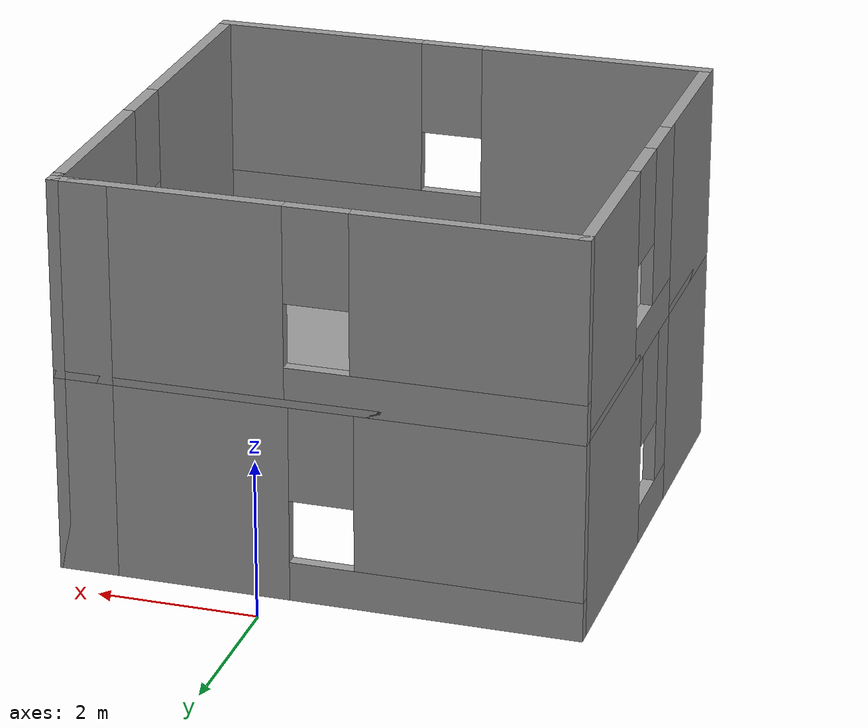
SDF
<?xml version='1.0'?>
<sdf version='1.6'>
  <model name='house8'>
    <pose frame=''>-0.555 -3.575 0 0 -0 0</pose>
    <link name='Floor_0'>
      <collision name='Floor_0_Collision'>
        <geometry>
          <box>
            <size>6.5 6.1 0.1</size>
          </box>
        </geometry>
        <pose frame=''>0 0 0.05 0 -0 0</pose>
      </collision>
      <visual name='Floor_0_Visual'>
        <pose frame=''>0 0 0.05 0 -0 0</pose>
        <geometry>
          <box>
            <size>6.5 6.1 0.1</size>
          </box>
        </geometry>
        <material>
          <script>
            <uri>file://media/materials/scripts/gazebo.material</uri>
            <name>Gazebo/Grey</name>
          </script>
          <ambient>1 1 1 1</ambient>
        </material>
        <meta>
          <layer>1</layer>
        </meta>
      </visual>
      <pose frame=''>0 0 2.5 0 -0 0</pose>
    </link>
    <link name='Wall_0'>
      <pose frame=''>-3.175 1.05 0 0 -0 -1.5708</pose>
      <visual name='Wall_0_Visual_0'>
        <pose frame=''>-0.661468 0 1.25 0 -0 0</pose>
        <geometry>
          <box>
            <size>2.67706 0.15 2.5</size>
          </box>
        </geometry>
        <material>
          <script>
            <uri>file://media/materials/scripts/gazebo.material</uri>
            <name>Gazebo/Grey</name>
          </script>
          <ambient>1 1 1 1</ambient>
        </material>
        <meta>
          <layer>0</layer>
        </meta>
      </visual>
      <collision name='Wall_0_Collision_0'>
        <geometry>
          <box>
            <size>2.67706 0.15 2.5</size>
          </box>
        </geometry>
        <pose frame=''>-0.661468 0 1.25 0 -0 0</pose>
      </collision>
      <visual name='Wall_0_Visual_1'>
        <pose frame=''>1.33853 0 0.25 0 -0 0</pose>
        <geometry>
          <box>
            <size>1.32294 0.15 0.5</size>
          </box>
        </geometry>
        <material>
          <script>
            <uri>file://media/materials/scripts/gazebo.material</uri>
            <name>Gazebo/Grey</name>
          </script>
          <ambient>1 1 1 1</ambient>
        </material>
        <meta>
          <layer>0</layer>
        </meta>
      </visual>
      <collision name='Wall_0_Collision_1'>
        <geometry>
          <box>
            <size>1.32294 0.15 0.5</size>
          </box>
        </geometry>
        <pose frame=''>1.33853 0 0.25 0 -0 0</pose>
      </collision>
      <visual name='Wall_0_Visual_2'>
        <pose frame=''>1.73853 0 1.5 0 -0 0</pose>
        <geometry>
          <box>
            <size>0.522937 0.15 2</size>
          </box>
        </geometry>
        <material>
          <script>
            <uri>file://media/materials/scripts/gazebo.material</uri>
            <name>Gazebo/Grey</name>
          </script>
          <ambient>1 1 1 1</ambient>
        </material>
        <meta>
          <layer>0</layer>
        </meta>
      </visual>
      <collision name='Wall_0_Collision_2'>
        <geometry>
          <box>
            <size>0.522937 0.15 2</size>
          </box>
        </geometry>
        <pose frame=''>1.73853 0 1.5 0 -0 0</pose>
      </collision>
      <visual name='Wall_0_Visual_3'>
        <pose frame=''>1.07706 0 1.9 0 -0 0</pose>
        <geometry>
          <box>
            <size>0.8 0.15 1.2</size>
          </box>
        </geometry>
        <material>
          <script>
            <uri>file://media/materials/scripts/gazebo.material</uri>
            <name>Gazebo/Grey</name>
          </script>
          <ambient>1 1 1 1</ambient>
        </material>
        <meta>
          <layer>0</layer>
        </meta>
      </visual>
      <collision name='Wall_0_Collision_3'>
        <geometry>
          <box>
            <size>0.8 0.15 1.2</size>
          </box>
        </geometry>
        <pose frame=''>1.07706 0 1.9 0 -0 0</pose>
      </collision>
    </link>
    <link name='Wall_10'>
      <collision name='Wall_10_Collision'>
        <geometry>
          <box>
            <size>0.15 0.15 2.5</size>
          </box>
        </geometry>
        <pose frame=''>0 0 1.25 0 -0 0</pose>
      </collision>
      <visual name='Wall_10_Visual'>
        <pose frame=''>0 0 1.25 0 -0 0</pose>
        <geometry>
          <box>
            <size>0.15 0.15 2.5</size>
          </box>
        </geometry>
        <material>
          <script>
            <uri>file://media/materials/scripts/gazebo.material</uri>
            <name>Gazebo/Grey</name>
          </script>
          <ambient>1 1 1 1</ambient>
        </material>
        <meta>
          <layer>0</layer>
        </meta>
      </visual>
      <pose frame=''>3.175 2.875 0 0 -0 0</pose>
    </link>
    <link name='Wall_11'>
      <collision name='Wall_11_Collision'>
        <geometry>
          <box>
            <size>0.15 0.15 2.5</size>
          </box>
        </geometry>
        <pose frame=''>0 0 1.25 0 -0 0</pose>
      </collision>
      <visual name='Wall_11_Visual'>
        <pose frame=''>0 0 1.25 0 -0 0</pose>
        <geometry>
          <box>
            <size>0.15 0.15 2.5</size>
          </box>
        </geometry>
        <material>
          <script>
            <uri>file://media/materials/scripts/gazebo.material</uri>
            <name>Gazebo/Grey</name>
          </script>
          <ambient>1 1 1 1</ambient>
        </material>
        <meta>
          <layer>0</layer>
        </meta>
      </visual>
      <pose frame=''>3.175 2.875 0 0 -0 0</pose>
    </link>
    <link name='Wall_12'>
      <collision name='Wall_12_Collision'>
        <geometry>
          <box>
            <size>0.25 0.15 2.5</size>
          </box>
        </geometry>
        <pose frame=''>0 0 1.25 0 -0 0</pose>
      </collision>
      <visual name='Wall_12_Visual'>
        <pose frame=''>0 0 1.25 0 -0 0</pose>
        <geometry>
          <box>
            <size>0.25 0.15 2.5</size>
          </box>
        </geometry>
        <material>
          <script>
            <uri>file://media/materials/scripts/gazebo.material</uri>
            <name>Gazebo/Grey</name>
          </script>
          <ambient>1 1 1 1</ambient>
        </material>
        <meta>
          <layer>0</layer>
        </meta>
      </visual>
      <pose frame=''>3.175 2.925 0 0 -0 1.5708</pose>
    </link>
    <link name='Wall_13'>
      <collision name='Wall_13_Collision'>
        <geometry>
          <box>
            <size>0.75 0.15 2.5</size>
          </box>
        </geometry>
        <pose frame=''>0 0 1.25 0 -0 0</pose>
      </collision>
      <visual name='Wall_13_Visual'>
        <pose frame=''>0 0 1.25 0 -0 0</pose>
        <geometry>
          <box>
            <size>0.75 0.15 2.5</size>
          </box>
        </geometry>
        <material>
          <script>
            <uri>file://media/materials/scripts/gazebo.material</uri>
            <name>Gazebo/Grey</name>
          </script>
          <ambient>1 1 1 1</ambient>
        </material>
        <meta>
          <layer>0</layer>
        </meta>
      </visual>
      <pose frame=''>2.875 2.975 0 0 -0 3.14159</pose>
    </link>
    <link name='Wall_15'>
      <pose frame=''>-3.175 1.05 2.5 0 -0 -1.5708</pose>
      <visual name='Wall_15_Visual_0'>
        <pose frame=''>-0.858079 0 1.25 0 -0 0</pose>
        <geometry>
          <box>
            <size>2.28384 0.15 2.5</size>
          </box>
        </geometry>
        <material>
          <script>
            <uri>file://media/materials/scripts/gazebo.material</uri>
            <name>Gazebo/Grey</name>
          </script>
          <ambient>1 1 1 1</ambient>
        </material>
        <meta>
          <layer>1</layer>
        </meta>
      </visual>
      <collision name='Wall_15_Collision_0'>
        <geometry>
          <box>
            <size>2.28384 0.15 2.5</size>
          </box>
        </geometry>
        <pose frame=''>-0.858079 0 1.25 0 -0 0</pose>
      </collision>
      <visual name='Wall_15_Visual_1'>
        <pose frame=''>1.14192 0 0.25 0 -0 0</pose>
        <geometry>
          <box>
            <size>1.71616 0.15 0.5</size>
          </box>
        </geometry>
        <material>
          <script>
            <uri>file://media/materials/scripts/gazebo.material</uri>
            <name>Gazebo/Grey</name>
          </script>
          <ambient>1 1 1 1</ambient>
        </material>
        <meta>
          <layer>1</layer>
        </meta>
      </visual>
      <collision name='Wall_15_Collision_1'>
        <geometry>
          <box>
            <size>1.71616 0.15 0.5</size>
          </box>
        </geometry>
        <pose frame=''>1.14192 0 0.25 0 -0 0</pose>
      </collision>
      <visual name='Wall_15_Visual_2'>
        <pose frame=''>1.54192 0 1.5 0 -0 0</pose>
        <geometry>
          <box>
            <size>0.916157 0.15 2</size>
          </box>
        </geometry>
        <material>
          <script>
            <uri>file://media/materials/scripts/gazebo.material</uri>
            <name>Gazebo/Grey</name>
          </script>
          <ambient>1 1 1 1</ambient>
        </material>
        <meta>
          <layer>1</layer>
        </meta>
      </visual>
      <collision name='Wall_15_Collision_2'>
        <geometry>
          <box>
            <size>0.916157 0.15 2</size>
          </box>
        </geometry>
        <pose frame=''>1.54192 0 1.5 0 -0 0</pose>
      </collision>
      <visual name='Wall_15_Visual_3'>
        <pose frame=''>0.683843 0 1.9 0 -0 0</pose>
        <geometry>
          <box>
            <size>0.8 0.15 1.2</size>
          </box>
        </geometry>
        <material>
          <script>
            <uri>file://media/materials/scripts/gazebo.material</uri>
            <name>Gazebo/Grey</name>
          </script>
          <ambient>1 1 1 1</ambient>
        </material>
        <meta>
          <layer>1</layer>
        </meta>
      </visual>
      <collision name='Wall_15_Collision_3'>
        <geometry>
          <box>
            <size>0.8 0.15 1.2</size>
          </box>
        </geometry>
        <pose frame=''>0.683843 0 1.9 0 -0 0</pose>
      </collision>
    </link>
    <link name='Wall_16'>
      <pose frame=''>-0.125 2.975 2.5 0 -0 3.14159</pose>
      <visual name='Wall_16_Visual_0'>
        <pose frame=''>-1.81376 0 1.25 0 -0 0</pose>
        <geometry>
          <box>
            <size>2.62247 0.15 2.5</size>
          </box>
        </geometry>
        <material>
          <script>
            <uri>file://media/materials/scripts/gazebo.material</uri>
            <name>Gazebo/Grey</name>
          </script>
          <ambient>1 1 1 1</ambient>
        </material>
        <meta>
          <layer>1</layer>
        </meta>
      </visual>
      <collision name='Wall_16_Collision_0'>
        <geometry>
          <box>
            <size>2.62247 0.15 2.5</size>
          </box>
        </geometry>
        <pose frame=''>-1.81376 0 1.25 0 -0 0</pose>
      </collision>
      <visual name='Wall_16_Visual_1'>
        <pose frame=''>1.31124 0 0.25 0 -0 0</pose>
        <geometry>
          <box>
            <size>3.62753 0.15 0.5</size>
          </box>
        </geometry>
        <material>
          <script>
            <uri>file://media/materials/scripts/gazebo.material</uri>
            <name>Gazebo/Grey</name>
          </script>
          <ambient>1 1 1 1</ambient>
        </material>
        <meta>
          <layer>1</layer>
        </meta>
      </visual>
      <collision name='Wall_16_Collision_1'>
        <geometry>
          <box>
            <size>3.62753 0.15 0.5</size>
          </box>
        </geometry>
        <pose frame=''>1.31124 0 0.25 0 -0 0</pose>
      </collision>
      <visual name='Wall_16_Visual_2'>
        <pose frame=''>1.71124 0 1.5 0 -0 0</pose>
        <geometry>
          <box>
            <size>2.82753 0.15 2</size>
          </box>
        </geometry>
        <material>
          <script>
            <uri>file://media/materials/scripts/gazebo.material</uri>
            <name>Gazebo/Grey</name>
          </script>
          <ambient>1 1 1 1</ambient>
        </material>
        <meta>
          <layer>1</layer>
        </meta>
      </visual>
      <collision name='Wall_16_Collision_2'>
        <geometry>
          <box>
            <size>2.82753 0.15 2</size>
          </box>
        </geometry>
        <pose frame=''>1.71124 0 1.5 0 -0 0</pose>
      </collision>
      <visual name='Wall_16_Visual_3'>
        <pose frame=''>-0.102526 0 1.9 0 -0 0</pose>
        <geometry>
          <box>
            <size>0.8 0.15 1.2</size>
          </box>
        </geometry>
        <material>
          <script>
            <uri>file://media/materials/scripts/gazebo.material</uri>
            <name>Gazebo/Grey</name>
          </script>
          <ambient>1 1 1 1</ambient>
        </material>
        <meta>
          <layer>1</layer>
        </meta>
      </visual>
      <collision name='Wall_16_Collision_3'>
        <geometry>
          <box>
            <size>0.8 0.15 1.2</size>
          </box>
        </geometry>
        <pose frame=''>-0.102526 0 1.9 0 -0 0</pose>
      </collision>
    </link>
    <link name='Wall_17'>
      <collision name='Wall_17_Collision'>
        <geometry>
          <box>
            <size>2.25 0.15 2.5</size>
          </box>
        </geometry>
        <pose frame=''>0 0 1.25 0 -0 0</pose>
      </collision>
      <visual name='Wall_17_Visual'>
        <pose frame=''>0 0 1.25 0 -0 0</pose>
        <geometry>
          <box>
            <size>2.25 0.15 2.5</size>
          </box>
        </geometry>
        <material>
          <script>
            <uri>file://media/materials/scripts/gazebo.material</uri>
            <name>Gazebo/Grey</name>
          </script>
          <ambient>1 1 1 1</ambient>
        </material>
        <meta>
          <layer>1</layer>
        </meta>
      </visual>
      <pose frame=''>-3.175 -1.925 2.5 0 -0 -1.5708</pose>
    </link>
    <link name='Wall_18'>
      <pose frame=''>0 -2.975 2.5 0 -0 0</pose>
      <visual name='Wall_18_Visual_0'>
        <pose frame=''>-1.76684 0 1.25 0 -0 0</pose>
        <geometry>
          <box>
            <size>2.96631 0.15 2.5</size>
          </box>
        </geometry>
        <material>
          <script>
            <uri>file://media/materials/scripts/gazebo.material</uri>
            <name>Gazebo/Grey</name>
          </script>
          <ambient>1 1 1 1</ambient>
        </material>
        <meta>
          <layer>1</layer>
        </meta>
      </visual>
      <collision name='Wall_18_Collision_0'>
        <geometry>
          <box>
            <size>2.96631 0.15 2.5</size>
          </box>
        </geometry>
        <pose frame=''>-1.76684 0 1.25 0 -0 0</pose>
      </collision>
      <visual name='Wall_18_Visual_1'>
        <pose frame=''>1.48316 0 0.25 0 -0 0</pose>
        <geometry>
          <box>
            <size>3.53369 0.15 0.5</size>
          </box>
        </geometry>
        <material>
          <script>
            <uri>file://media/materials/scripts/gazebo.material</uri>
            <name>Gazebo/Grey</name>
          </script>
          <ambient>1 1 1 1</ambient>
        </material>
        <meta>
          <layer>1</layer>
        </meta>
      </visual>
      <collision name='Wall_18_Collision_1'>
        <geometry>
          <box>
            <size>3.53369 0.15 0.5</size>
          </box>
        </geometry>
        <pose frame=''>1.48316 0 0.25 0 -0 0</pose>
      </collision>
      <visual name='Wall_18_Visual_2'>
        <pose frame=''>1.88315 0 1.5 0 -0 0</pose>
        <geometry>
          <box>
            <size>2.73369 0.15 2</size>
          </box>
        </geometry>
        <material>
          <script>
            <uri>file://media/materials/scripts/gazebo.material</uri>
            <name>Gazebo/Grey</name>
          </script>
          <ambient>1 1 1 1</ambient>
        </material>
        <meta>
          <layer>1</layer>
        </meta>
      </visual>
      <collision name='Wall_18_Collision_2'>
        <geometry>
          <box>
            <size>2.73369 0.15 2</size>
          </box>
        </geometry>
        <pose frame=''>1.88315 0 1.5 0 -0 0</pose>
      </collision>
      <visual name='Wall_18_Visual_3'>
        <pose frame=''>0.11631 0 1.9 0 -0 0</pose>
        <geometry>
          <box>
            <size>0.8 0.15 1.2</size>
          </box>
        </geometry>
        <material>
          <script>
            <uri>file://media/materials/scripts/gazebo.material</uri>
            <name>Gazebo/Grey</name>
          </script>
          <ambient>1 1 1 1</ambient>
        </material>
        <meta>
          <layer>1</layer>
        </meta>
      </visual>
      <collision name='Wall_18_Collision_3'>
        <geometry>
          <box>
            <size>0.8 0.15 1.2</size>
          </box>
        </geometry>
        <pose frame=''>0.11631 0 1.9 0 -0 0</pose>
      </collision>
    </link>
    <link name='Wall_19'>
      <pose frame=''>3.175 -0.05 2.5 0 -0 1.5708</pose>
      <visual name='Wall_19_Visual_0'>
        <pose frame=''>-1.59601 0 1.25 0 -0 0</pose>
        <geometry>
          <box>
            <size>2.80798 0.15 2.5</size>
          </box>
        </geometry>
        <material>
          <script>
            <uri>file://media/materials/scripts/gazebo.material</uri>
            <name>Gazebo/Grey</name>
          </script>
          <ambient>1 1 1 1</ambient>
        </material>
        <meta>
          <layer>1</layer>
        </meta>
      </visual>
      <collision name='Wall_19_Collision_0'>
        <geometry>
          <box>
            <size>2.80798 0.15 2.5</size>
          </box>
        </geometry>
        <pose frame=''>-1.59601 0 1.25 0 -0 0</pose>
      </collision>
      <visual name='Wall_19_Visual_1'>
        <pose frame=''>1.40399 0 0.25 0 -0 0</pose>
        <geometry>
          <box>
            <size>3.19202 0.15 0.5</size>
          </box>
        </geometry>
        <material>
          <script>
            <uri>file://media/materials/scripts/gazebo.material</uri>
            <name>Gazebo/Grey</name>
          </script>
          <ambient>1 1 1 1</ambient>
        </material>
        <meta>
          <layer>1</layer>
        </meta>
      </visual>
      <collision name='Wall_19_Collision_1'>
        <geometry>
          <box>
            <size>3.19202 0.15 0.5</size>
          </box>
        </geometry>
        <pose frame=''>1.40399 0 0.25 0 -0 0</pose>
      </collision>
      <visual name='Wall_19_Visual_2'>
        <pose frame=''>1.80399 0 1.5 0 -0 0</pose>
        <geometry>
          <box>
            <size>2.39202 0.15 2</size>
          </box>
        </geometry>
        <material>
          <script>
            <uri>file://media/materials/scripts/gazebo.material</uri>
            <name>Gazebo/Grey</name>
          </script>
          <ambient>1 1 1 1</ambient>
        </material>
        <meta>
          <layer>1</layer>
        </meta>
      </visual>
      <collision name='Wall_19_Collision_2'>
        <geometry>
          <box>
            <size>2.39202 0.15 2</size>
          </box>
        </geometry>
        <pose frame=''>1.80399 0 1.5 0 -0 0</pose>
      </collision>
      <visual name='Wall_19_Visual_3'>
        <pose frame=''>0.207982 0 1.9 0 -0 0</pose>
        <geometry>
          <box>
            <size>0.8 0.15 1.2</size>
          </box>
        </geometry>
        <material>
          <script>
            <uri>file://media/materials/scripts/gazebo.material</uri>
            <name>Gazebo/Grey</name>
          </script>
          <ambient>1 1 1 1</ambient>
        </material>
        <meta>
          <layer>1</layer>
        </meta>
      </visual>
      <collision name='Wall_19_Collision_3'>
        <geometry>
          <box>
            <size>0.8 0.15 1.2</size>
          </box>
        </geometry>
        <pose frame=''>0.207982 0 1.9 0 -0 0</pose>
      </collision>
    </link>
    <link name='Wall_20'>
      <collision name='Wall_20_Collision'>
        <geometry>
          <box>
            <size>0.15 0.15 2.5</size>
          </box>
        </geometry>
        <pose frame=''>0 0 1.25 0 -0 0</pose>
      </collision>
      <visual name='Wall_20_Visual'>
        <pose frame=''>0 0 1.25 0 -0 0</pose>
        <geometry>
          <box>
            <size>0.15 0.15 2.5</size>
          </box>
        </geometry>
        <material>
          <script>
            <uri>file://media/materials/scripts/gazebo.material</uri>
            <name>Gazebo/Grey</name>
          </script>
          <ambient>1 1 1 1</ambient>
        </material>
        <meta>
          <layer>1</layer>
        </meta>
      </visual>
      <pose frame=''>3.175 2.875 2.5 0 -0 0</pose>
    </link>
    <link name='Wall_21'>
      <collision name='Wall_21_Collision'>
        <geometry>
          <box>
            <size>0.15 0.15 2.5</size>
          </box>
        </geometry>
        <pose frame=''>0 0 1.25 0 -0 0</pose>
      </collision>
      <visual name='Wall_21_Visual'>
        <pose frame=''>0 0 1.25 0 -0 0</pose>
        <geometry>
          <box>
            <size>0.15 0.15 2.5</size>
          </box>
        </geometry>
        <material>
          <script>
            <uri>file://media/materials/scripts/gazebo.material</uri>
            <name>Gazebo/Grey</name>
          </script>
          <ambient>1 1 1 1</ambient>
        </material>
        <meta>
          <layer>1</layer>
        </meta>
      </visual>
      <pose frame=''>3.175 2.875 2.5 0 -0 0</pose>
    </link>
    <link name='Wall_22'>
      <collision name='Wall_22_Collision'>
        <geometry>
          <box>
            <size>0.25 0.15 2.5</size>
          </box>
        </geometry>
        <pose frame=''>0 0 1.25 0 -0 0</pose>
      </collision>
      <visual name='Wall_22_Visual'>
        <pose frame=''>0 0 1.25 0 -0 0</pose>
        <geometry>
          <box>
            <size>0.25 0.15 2.5</size>
          </box>
        </geometry>
        <material>
          <script>
            <uri>file://media/materials/scripts/gazebo.material</uri>
            <name>Gazebo/Grey</name>
          </script>
          <ambient>1 1 1 1</ambient>
        </material>
        <meta>
          <layer>1</layer>
        </meta>
      </visual>
      <pose frame=''>3.175 2.925 2.5 0 -0 1.5708</pose>
    </link>
    <link name='Wall_23'>
      <collision name='Wall_23_Collision'>
        <geometry>
          <box>
            <size>0.75 0.15 2.5</size>
          </box>
        </geometry>
        <pose frame=''>0 0 1.25 0 -0 0</pose>
      </collision>
      <visual name='Wall_23_Visual'>
        <pose frame=''>0 0 1.25 0 -0 0</pose>
        <geometry>
          <box>
            <size>0.75 0.15 2.5</size>
          </box>
        </geometry>
        <material>
          <script>
            <uri>file://media/materials/scripts/gazebo.material</uri>
            <name>Gazebo/Grey</name>
          </script>
          <ambient>1 1 1 1</ambient>
        </material>
        <meta>
          <layer>1</layer>
        </meta>
      </visual>
      <pose frame=''>2.875 2.975 2.5 0 -0 3.14159</pose>
    </link>
    <link name='Wall_3'>
      <pose frame=''>-0.125 2.975 0 0 -0 3.14159</pose>
      <visual name='Wall_3_Visual_0'>
        <pose frame=''>-1.79063 0 1.25 0 -0 0</pose>
        <geometry>
          <box>
            <size>2.66873 0.15 2.5</size>
          </box>
        </geometry>
        <material>
          <script>
            <uri>file://media/materials/scripts/gazebo.material</uri>
            <name>Gazebo/Grey</name>
          </script>
          <ambient>1 1 1 1</ambient>
        </material>
        <meta>
          <layer>0</layer>
        </meta>
      </visual>
      <collision name='Wall_3_Collision_0'>
        <geometry>
          <box>
            <size>2.66873 0.15 2.5</size>
          </box>
        </geometry>
        <pose frame=''>-1.79063 0 1.25 0 -0 0</pose>
      </collision>
      <visual name='Wall_3_Visual_1'>
        <pose frame=''>1.33437 0 0.25 0 -0 0</pose>
        <geometry>
          <box>
            <size>3.58127 0.15 0.5</size>
          </box>
        </geometry>
        <material>
          <script>
            <uri>file://media/materials/scripts/gazebo.material</uri>
            <name>Gazebo/Grey</name>
          </script>
          <ambient>1 1 1 1</ambient>
        </material>
        <meta>
          <layer>0</layer>
        </meta>
      </visual>
      <collision name='Wall_3_Collision_1'>
        <geometry>
          <box>
            <size>3.58127 0.15 0.5</size>
          </box>
        </geometry>
        <pose frame=''>1.33437 0 0.25 0 -0 0</pose>
      </collision>
      <visual name='Wall_3_Visual_2'>
        <pose frame=''>1.73437 0 1.5 0 -0 0</pose>
        <geometry>
          <box>
            <size>2.78126 0.15 2</size>
          </box>
        </geometry>
        <material>
          <script>
            <uri>file://media/materials/scripts/gazebo.material</uri>
            <name>Gazebo/Grey</name>
          </script>
          <ambient>1 1 1 1</ambient>
        </material>
        <meta>
          <layer>0</layer>
        </meta>
      </visual>
      <collision name='Wall_3_Collision_2'>
        <geometry>
          <box>
            <size>2.78126 0.15 2</size>
          </box>
        </geometry>
        <pose frame=''>1.73437 0 1.5 0 -0 0</pose>
      </collision>
      <visual name='Wall_3_Visual_3'>
        <pose frame=''>-0.056265 0 1.9 0 -0 0</pose>
        <geometry>
          <box>
            <size>0.8 0.15 1.2</size>
          </box>
        </geometry>
        <material>
          <script>
            <uri>file://media/materials/scripts/gazebo.material</uri>
            <name>Gazebo/Grey</name>
          </script>
          <ambient>1 1 1 1</ambient>
        </material>
        <meta>
          <layer>0</layer>
        </meta>
      </visual>
      <collision name='Wall_3_Collision_3'>
        <geometry>
          <box>
            <size>0.8 0.15 1.2</size>
          </box>
        </geometry>
        <pose frame=''>-0.056265 0 1.9 0 -0 0</pose>
      </collision>
    </link>
    <link name='Wall_5'>
      <collision name='Wall_5_Collision'>
        <geometry>
          <box>
            <size>2.25 0.15 2.5</size>
          </box>
        </geometry>
        <pose frame=''>0 0 1.25 0 -0 0</pose>
      </collision>
      <visual name='Wall_5_Visual'>
        <pose frame=''>0 0 1.25 0 -0 0</pose>
        <geometry>
          <box>
            <size>2.25 0.15 2.5</size>
          </box>
        </geometry>
        <material>
          <script>
            <uri>file://media/materials/scripts/gazebo.material</uri>
            <name>Gazebo/Grey</name>
          </script>
          <ambient>1 1 1 1</ambient>
        </material>
        <meta>
          <layer>0</layer>
        </meta>
      </visual>
      <pose frame=''>-3.175 -1.925 0 0 -0 -1.5708</pose>
    </link>
    <link name='Wall_6'>
      <pose frame=''>0 -2.975 0 0 -0 0</pose>
      <visual name='Wall_6_Visual_0'>
        <pose frame=''>-2.22554 0 1.25 0 -0 0</pose>
        <geometry>
          <box>
            <size>2.04891 0.15 2.5</size>
          </box>
        </geometry>
        <material>
          <script>
            <uri>file://media/materials/scripts/gazebo.material</uri>
            <name>Gazebo/Grey</name>
          </script>
          <ambient>1 1 1 1</ambient>
        </material>
        <meta>
          <layer>0</layer>
        </meta>
      </visual>
      <collision name='Wall_6_Collision_0'>
        <geometry>
          <box>
            <size>2.04891 0.15 2.5</size>
          </box>
        </geometry>
        <pose frame=''>-2.22554 0 1.25 0 -0 0</pose>
      </collision>
      <visual name='Wall_6_Visual_1'>
        <pose frame=''>2.23777 0 1.25 0 -0 0</pose>
        <geometry>
          <box>
            <size>2.02447 0.15 2.5</size>
          </box>
        </geometry>
        <material>
          <script>
            <uri>file://media/materials/scripts/gazebo.material</uri>
            <name>Gazebo/Grey</name>
          </script>
          <ambient>1 1 1 1</ambient>
        </material>
        <meta>
          <layer>0</layer>
        </meta>
      </visual>
      <collision name='Wall_6_Collision_1'>
        <geometry>
          <box>
            <size>2.02447 0.15 2.5</size>
          </box>
        </geometry>
        <pose frame=''>2.23777 0 1.25 0 -0 0</pose>
      </collision>
      <visual name='Wall_6_Visual_2'>
        <pose frame=''>0.012222 0 2.25 0 -0 0</pose>
        <geometry>
          <box>
            <size>2.42662 0.15 0.5</size>
          </box>
        </geometry>
        <material>
          <script>
            <uri>file://media/materials/scripts/gazebo.material</uri>
            <name>Gazebo/Grey</name>
          </script>
          <ambient>1 1 1 1</ambient>
        </material>
        <meta>
          <layer>0</layer>
        </meta>
      </visual>
      <collision name='Wall_6_Collision_2'>
        <geometry>
          <box>
            <size>2.42662 0.15 0.5</size>
          </box>
        </geometry>
        <pose frame=''>0.012222 0 2.25 0 -0 0</pose>
      </collision>
    </link>
    <link name='Wall_7'>
      <pose frame=''>3.175 -0.05 0 0 -0 1.5708</pose>
      <visual name='Wall_7_Visual_0'>
        <pose frame=''>-2.04314 0 1.25 0 -0 0</pose>
        <geometry>
          <box>
            <size>1.91371 0.15 2.5</size>
          </box>
        </geometry>
        <material>
          <script>
            <uri>file://media/materials/scripts/gazebo.material</uri>
            <name>Gazebo/Grey</name>
          </script>
          <ambient>1 1 1 1</ambient>
        </material>
        <meta>
          <layer>0</layer>
        </meta>
      </visual>
      <collision name='Wall_7_Collision_0'>
        <geometry>
          <box>
            <size>1.91371 0.15 2.5</size>
          </box>
        </geometry>
        <pose frame=''>-2.04314 0 1.25 0 -0 0</pose>
      </collision>
      <visual name='Wall_7_Visual_1'>
        <pose frame=''>1.78851 0 1.25 0 -0 0</pose>
        <geometry>
          <box>
            <size>2.42298 0.15 2.5</size>
          </box>
        </geometry>
        <material>
          <script>
            <uri>file://media/materials/scripts/gazebo.material</uri>
            <name>Gazebo/Grey</name>
          </script>
          <ambient>1 1 1 1</ambient>
        </material>
        <meta>
          <layer>0</layer>
        </meta>
      </visual>
      <collision name='Wall_7_Collision_1'>
        <geometry>
          <box>
            <size>2.42298 0.15 2.5</size>
          </box>
        </geometry>
        <pose frame=''>1.78851 0 1.25 0 -0 0</pose>
      </collision>
      <visual name='Wall_7_Visual_2'>
        <pose frame=''>-0.254631 0 2.25 0 -0 0</pose>
        <geometry>
          <box>
            <size>1.66331 0.15 0.5</size>
          </box>
        </geometry>
        <material>
          <script>
            <uri>file://media/materials/scripts/gazebo.material</uri>
            <name>Gazebo/Grey</name>
          </script>
          <ambient>1 1 1 1</ambient>
        </material>
        <meta>
          <layer>0</layer>
        </meta>
      </visual>
      <collision name='Wall_7_Collision_2'>
        <geometry>
          <box>
            <size>1.66331 0.15 0.5</size>
          </box>
        </geometry>
        <pose frame=''>-0.254631 0 2.25 0 -0 0</pose>
      </collision>
    </link>
    <static>1</static>
  </model>
</sdf>
